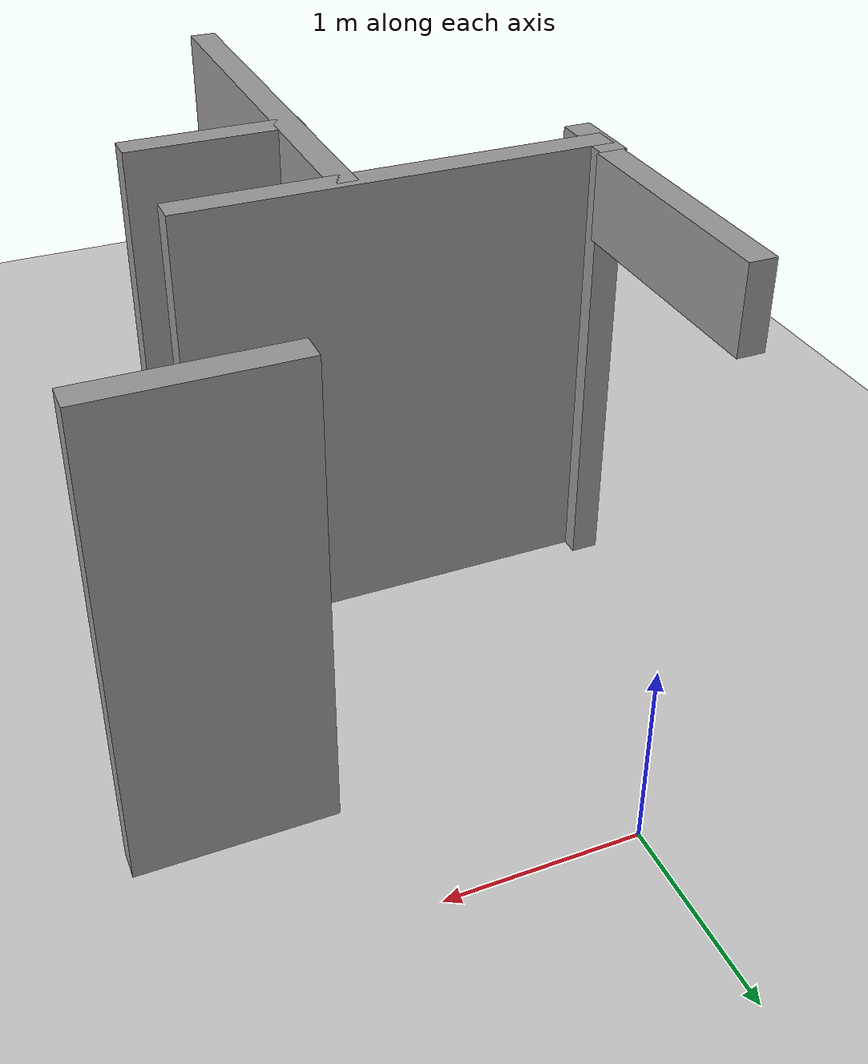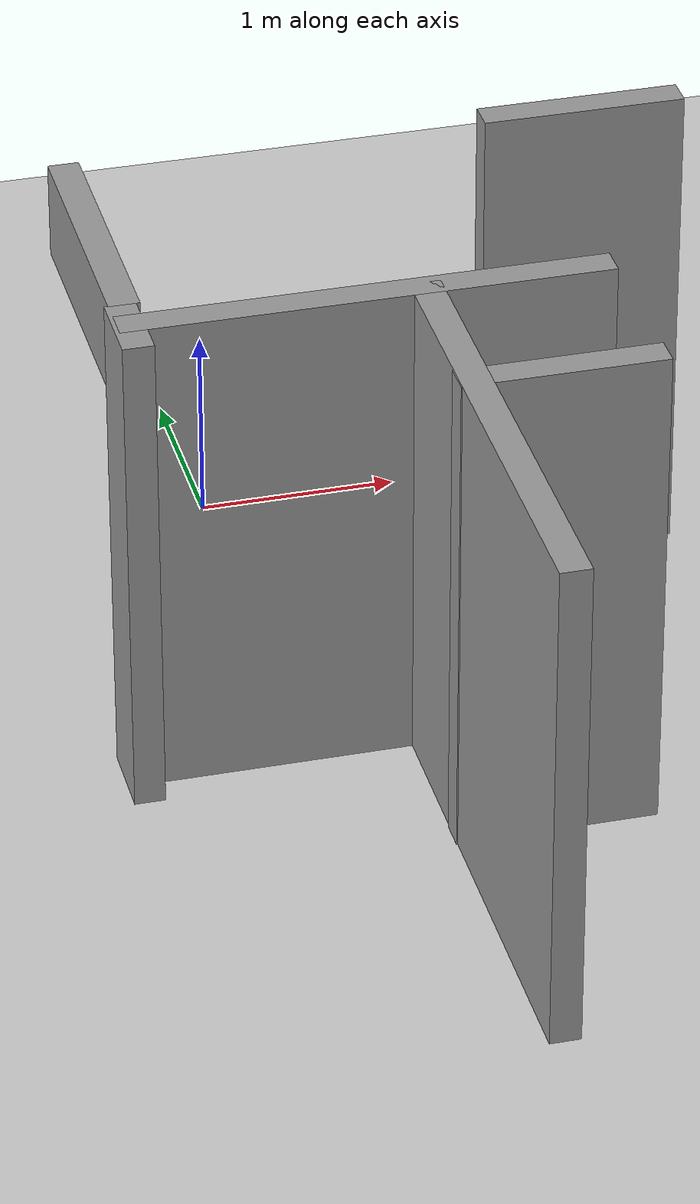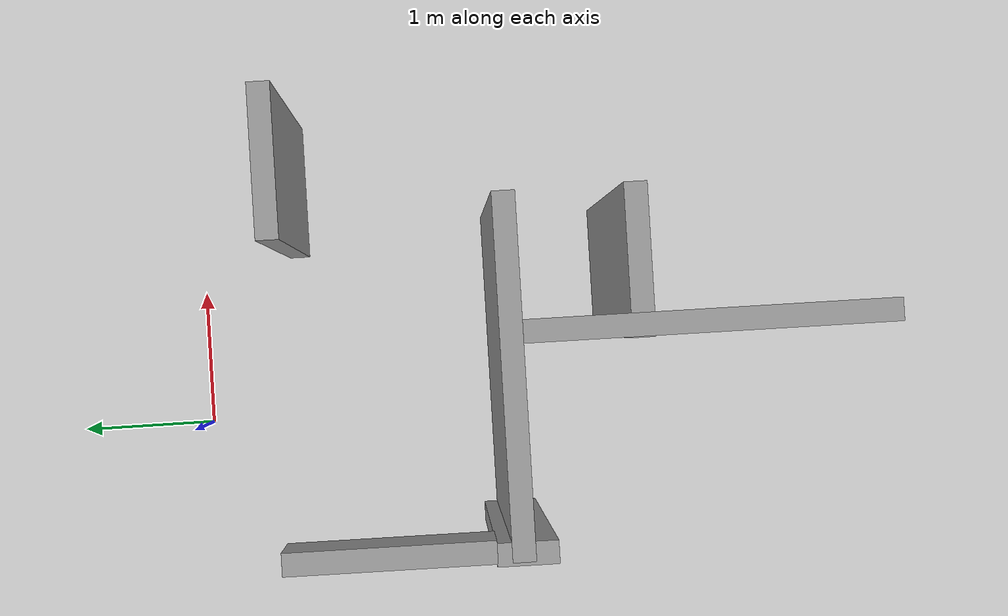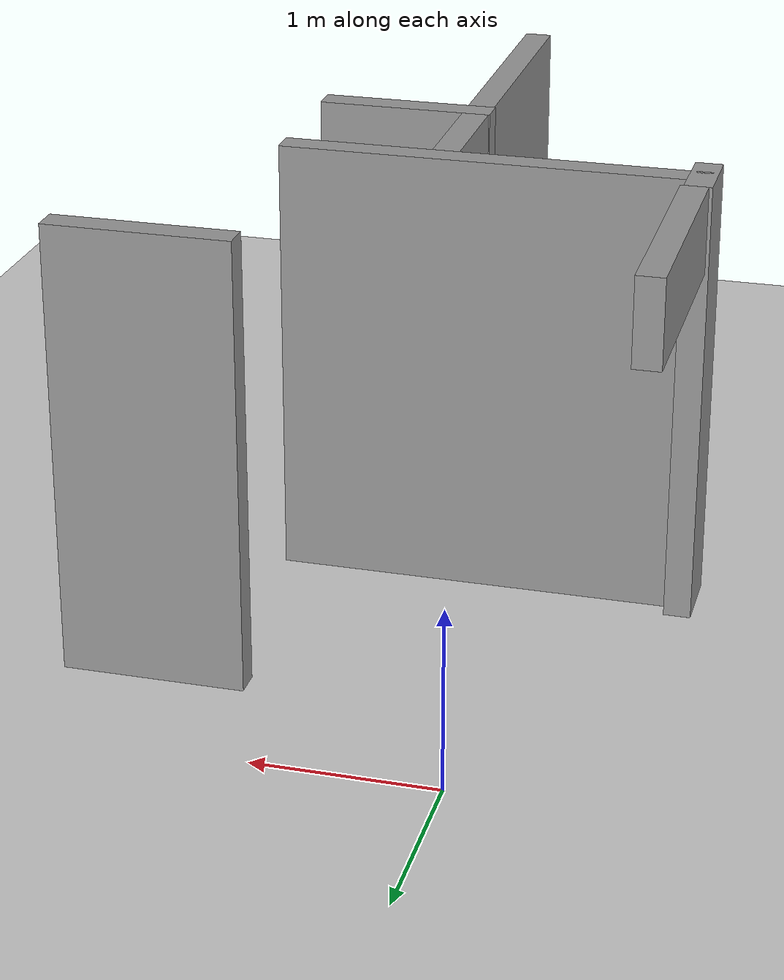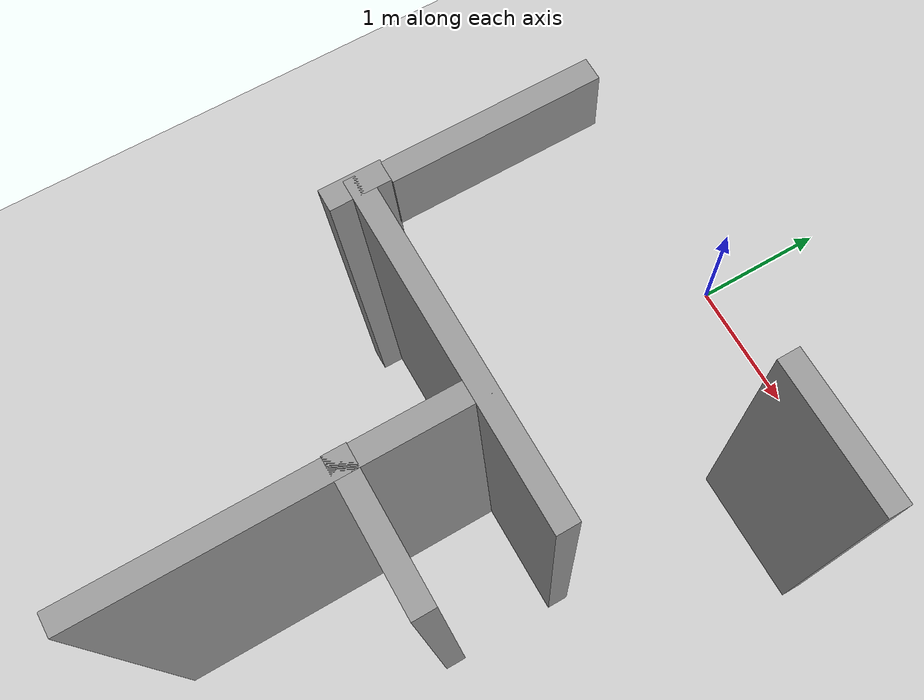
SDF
<sdf version="1.7">
 <world name="default">
  <model name="demo_clean">
   <static>1</static>
   <link name="Wall_19">
    <collision name="Wall_19_Collision">
     <geometry><box><size>2.34163 0.15 2.5</size></box></geometry>
     <pose>0 0 1.25 0 -0 0</pose>
     <surface>
      <friction>
       <ode><mu>1</mu><mu2>1</mu2><fdir1>0 0 0</fdir1><slip1>0</slip1><slip2>0</slip2></ode>
       <torsional>
        <coefficient>1</coefficient>
        <patch_radius>0</patch_radius>
        <surface_radius>0</surface_radius>
        <use_patch_radius>1</use_patch_radius>
        <ode><slip>0</slip></ode>
       </torsional>
      </friction>
      <bounce><restitution_coefficient>0</restitution_coefficient><threshold>1e+06</threshold></bounce>
      <contact>
       <collide_without_contact>0</collide_without_contact>
       <collide_without_contact_bitmask>1</collide_without_contact_bitmask>
       <collide_bitmask>1</collide_bitmask>
       <ode>
        <soft_cfm>0</soft_cfm>
        <soft_erp>0.2</soft_erp>
        <kp>1e+13</kp>
        <kd>1</kd>
        <max_vel>0.01</max_vel>
        <min_depth>0</min_depth>
       </ode>
       <bullet>
        <split_impulse>1</split_impulse>
        <split_impulse_penetration_threshold>-0.01</split_impulse_penetration_threshold>
        <soft_cfm>0</soft_cfm>
        <soft_erp>0.2</soft_erp>
        <kp>1e+13</kp>
        <kd>1</kd>
       </bullet>
      </contact>
     </surface>
    </collision>
    <visual name="Wall_19_Visual">
     <geometry><box><size>2.34163 0.15 2.5</size></box></geometry>
     <material>
      <script><name>Gazebo/Grey</name><uri>file://media/materials/scripts/gazebo.material</uri></script>
      <ambient>1 1 1 1</ambient>
      <shader type="pixel"><normal_map>default</normal_map></shader>
     </material>
     <pose>0 0 1.25 0 -0 0</pose>
    </visual>
    <inertial>
     <inertia><ixx>0</ixx><iyy>0</iyy><izz>0</izz><ixy>0</ixy><ixz>0</ixz><iyz>0</iyz></inertia>
     <mass>1</mass>
    </inertial>
    <pose>0.295923 -2.24288 0 0 -0 0</pose>
   </link>
   <link name="Wall_21">
    <collision name="Wall_21_Collision">
     <geometry><box><size>2.5 0.15 2.5</size></box></geometry>
     <pose>0 0 1.25 0 -0 0</pose>
     <surface>
      <friction>
       <ode><mu>1</mu><mu2>1</mu2><fdir1>0 0 0</fdir1><slip1>0</slip1><slip2>0</slip2></ode>
       <torsional>
        <coefficient>1</coefficient>
        <patch_radius>0</patch_radius>
        <surface_radius>0</surface_radius>
        <use_patch_radius>1</use_patch_radius>
        <ode><slip>0</slip></ode>
       </torsional>
      </friction>
      <bounce><restitution_coefficient>0</restitution_coefficient><threshold>1e+06</threshold></bounce>
      <contact>
       <collide_without_contact>0</collide_without_contact>
       <collide_without_contact_bitmask>1</collide_without_contact_bitmask>
       <collide_bitmask>1</collide_bitmask>
       <ode>
        <soft_cfm>0</soft_cfm>
        <soft_erp>0.2</soft_erp>
        <kp>1e+13</kp>
        <kd>1</kd>
        <max_vel>0.01</max_vel>
        <min_depth>0</min_depth>
       </ode>
       <bullet>
        <split_impulse>1</split_impulse>
        <split_impulse_penetration_threshold>-0.01</split_impulse_penetration_threshold>
        <soft_cfm>0</soft_cfm>
        <soft_erp>0.2</soft_erp>
        <kp>1e+13</kp>
        <kd>1</kd>
       </bullet>
      </contact>
     </surface>
    </collision>
    <visual name="Wall_21_Visual">
     <geometry><box><size>2.5 0.15 2.5</size></box></geometry>
     <material>
      <script><name>Gazebo/Grey</name><uri>file://media/materials/scripts/gazebo.material</uri></script>
      <ambient>1 1 1 1</ambient>
      <shader type="pixel"><normal_map>default</normal_map></shader>
     </material>
     <pose>0 0 1.25 0 -0 0</pose>
    </visual>
    <pose>0.573753 -3.46553 0 0 0 -1.5708</pose>
   </link>
   <link name="Wall_21_clone_0">
    <collision name="Wall_21_Collision">
     <geometry><box><size>0.394105 0.15 2.5</size></box></geometry>
     <pose>0 0 1.25 0 -0 0</pose>
     <surface>
      <friction>
       <ode><mu>1</mu><mu2>1</mu2><fdir1>0 0 0</fdir1><slip1>0</slip1><slip2>0</slip2></ode>
       <torsional>
        <coefficient>1</coefficient>
        <patch_radius>0</patch_radius>
        <surface_radius>0</surface_radius>
        <use_patch_radius>1</use_patch_radius>
        <ode><slip>0</slip></ode>
       </torsional>
      </friction>
      <bounce><restitution_coefficient>0</restitution_coefficient><threshold>1e+06</threshold></bounce>
      <contact>
       <collide_without_contact>0</collide_without_contact>
       <collide_without_contact_bitmask>1</collide_without_contact_bitmask>
       <collide_bitmask>1</collide_bitmask>
       <ode>
        <soft_cfm>0</soft_cfm>
        <soft_erp>0.2</soft_erp>
        <kp>1e+13</kp>
        <kd>1</kd>
        <max_vel>0.01</max_vel>
        <min_depth>0</min_depth>
       </ode>
       <bullet>
        <split_impulse>1</split_impulse>
        <split_impulse_penetration_threshold>-0.01</split_impulse_penetration_threshold>
        <soft_cfm>0</soft_cfm>
        <soft_erp>0.2</soft_erp>
        <kp>1e+13</kp>
        <kd>1</kd>
       </bullet>
      </contact>
     </surface>
    </collision>
    <visual name="Wall_21_Visual">
     <geometry><box><size>0.394105 0.15 2.5</size></box></geometry>
     <material>
      <script><name>Gazebo/Grey</name><uri>file://media/materials/scripts/gazebo.material</uri></script>
      <ambient>1 1 1 1</ambient>
      <shader type="pixel"><normal_map>default</normal_map></shader>
     </material>
     <pose>0 0 1.25 0 -0 0</pose>
    </visual>
    <inertial>
     <inertia><ixx>0</ixx><iyy>0</iyy><izz>0</izz><ixy>0</ixy><ixz>0</ixz><iyz>0</iyz></inertia>
     <mass>1</mass>
    </inertial>
    <pose>-0.820336 -2.26773 0 0 0 -1.5708</pose>
   </link>
   <link name="Wall_23">
    <collision name="Wall_23_Collision">
     <geometry><box><size>0.981708 0.15 2.5</size></box></geometry>
     <pose>0 0 1.25 0 -0 0</pose>
     <surface>
      <friction>
       <ode><mu>1</mu><mu2>1</mu2><fdir1>0 0 0</fdir1><slip1>0</slip1><slip2>0</slip2></ode>
       <torsional>
        <coefficient>1</coefficient>
        <patch_radius>0</patch_radius>
        <surface_radius>0</surface_radius>
        <use_patch_radius>1</use_patch_radius>
        <ode><slip>0</slip></ode>
       </torsional>
      </friction>
      <bounce><restitution_coefficient>0</restitution_coefficient><threshold>1e+06</threshold></bounce>
      <contact>
       <collide_without_contact>0</collide_without_contact>
       <collide_without_contact_bitmask>1</collide_without_contact_bitmask>
       <collide_bitmask>1</collide_bitmask>
       <ode>
        <soft_cfm>0</soft_cfm>
        <soft_erp>0.2</soft_erp>
        <kp>1e+13</kp>
        <kd>1</kd>
        <max_vel>0.01</max_vel>
        <min_depth>0</min_depth>
       </ode>
       <bullet>
        <split_impulse>1</split_impulse>
        <split_impulse_penetration_threshold>-0.01</split_impulse_penetration_threshold>
        <soft_cfm>0</soft_cfm>
        <soft_erp>0.2</soft_erp>
        <kp>1e+13</kp>
        <kd>1</kd>
       </bullet>
      </contact>
     </surface>
    </collision>
    <visual name="Wall_23_Visual">
     <geometry><box><size>0.981708 0.15 2.5</size></box></geometry>
     <material>
      <script><name>Gazebo/Grey</name><uri>file://media/materials/scripts/gazebo.material</uri></script>
      <ambient>1 1 1 1</ambient>
      <shader type="pixel"><normal_map>default</normal_map></shader>
     </material>
     <pose>0 0 1.25 0 -0 0</pose>
    </visual>
    <inertial>
     <inertia><ixx>0</ixx><iyy>0</iyy><izz>0</izz><ixy>0</ixy><ixz>0</ixz><iyz>0</iyz></inertia>
     <mass>1</mass>
    </inertial>
    <pose>0.983425 -3.07697 0 0 -0 0</pose>
   </link>
   <link name="Wall_28">
    <collision name="Wall_28_Collision">
     <geometry><box><size>1 0.15 2.5</size></box></geometry>
     <pose>0 0 1.25 0 -0 0</pose>
     <surface>
      <friction>
       <ode><mu>1</mu><mu2>1</mu2><fdir1>0 0 0</fdir1><slip1>0</slip1><slip2>0</slip2></ode>
       <torsional>
        <coefficient>1</coefficient>
        <patch_radius>0</patch_radius>
        <surface_radius>0</surface_radius>
        <use_patch_radius>1</use_patch_radius>
        <ode><slip>0</slip></ode>
       </torsional>
      </friction>
      <bounce><restitution_coefficient>0</restitution_coefficient><threshold>1e+06</threshold></bounce>
      <contact>
       <collide_without_contact>0</collide_without_contact>
       <collide_without_contact_bitmask>1</collide_without_contact_bitmask>
       <collide_bitmask>1</collide_bitmask>
       <ode>
        <soft_cfm>0</soft_cfm>
        <soft_erp>0.2</soft_erp>
        <kp>1e+13</kp>
        <kd>1</kd>
        <max_vel>0.01</max_vel>
        <min_depth>0</min_depth>
       </ode>
       <bullet>
        <split_impulse>1</split_impulse>
        <split_impulse_penetration_threshold>-0.01</split_impulse_penetration_threshold>
        <soft_cfm>0</soft_cfm>
        <soft_erp>0.2</soft_erp>
        <kp>1e+13</kp>
        <kd>1</kd>
       </bullet>
      </contact>
     </surface>
    </collision>
    <visual name="Wall_28_Visual">
     <geometry><box><size>1 0.15 2.5</size></box></geometry>
     <material>
      <script><name>Gazebo/Grey</name><uri>file://media/materials/scripts/gazebo.material</uri></script>
      <ambient>1 1 1 1</ambient>
      <shader type="pixel"><normal_map>default</normal_map></shader>
     </material>
     <pose>0 0 1.25 0 -0 0</pose>
    </visual>
    <pose>1.74215 -0.745235 0 0 -0 0</pose>
   </link>
   <link name="Wall_28_clone_clone_clone">
    <gravity>0</gravity>
    <collision name="Wall_28_Collision">
     <geometry><box><size>1.35894 0.15 0.476648</size></box></geometry>
     <pose>0 0 1.25 0 -0 0</pose>
     <surface>
      <friction>
       <ode><mu>1</mu><mu2>1</mu2><fdir1>0 0 0</fdir1><slip1>0</slip1><slip2>0</slip2></ode>
       <torsional>
        <coefficient>1</coefficient>
        <patch_radius>0</patch_radius>
        <surface_radius>0</surface_radius>
        <use_patch_radius>1</use_patch_radius>
        <ode><slip>0</slip></ode>
       </torsional>
      </friction>
      <bounce><restitution_coefficient>0</restitution_coefficient><threshold>1e+06</threshold></bounce>
      <contact>
       <collide_without_contact>0</collide_without_contact>
       <collide_without_contact_bitmask>1</collide_without_contact_bitmask>
       <collide_bitmask>1</collide_bitmask>
       <ode>
        <soft_cfm>0</soft_cfm>
        <soft_erp>0.2</soft_erp>
        <kp>1e+13</kp>
        <kd>1</kd>
        <max_vel>0.01</max_vel>
        <min_depth>0</min_depth>
       </ode>
       <bullet>
        <split_impulse>1</split_impulse>
        <split_impulse_penetration_threshold>-0.01</split_impulse_penetration_threshold>
        <soft_cfm>0</soft_cfm>
        <soft_erp>0.2</soft_erp>
        <kp>1e+13</kp>
        <kd>1</kd>
       </bullet>
      </contact>
     </surface>
    </collision>
    <visual name="Wall_28_Visual">
     <geometry><box><size>1.35894 0.15 0.476648</size></box></geometry>
     <material>
      <script><name>Gazebo/Grey</name><uri>file://media/materials/scripts/gazebo.material</uri></script>
      <ambient>1 1 1 1</ambient>
      <shader type="pixel"><normal_map>__default__</normal_map></shader>
     </material>
     <pose>0 0 1.25 0 -0 0</pose>
    </visual>
    <inertial>
     <inertia><ixx>0</ixx><iyy>0</iyy><izz>0</izz><ixy>0</ixy><ixz>0</ixz><iyz>0</iyz></inertia>
     <mass>1</mass>
    </inertial>
    <pose>-0.802228 -1.39589 1.01168 0 0 -1.57004</pose>
   </link>
  </model>
  <model name="ground_plane">
   <static>1</static>
   <link name="link">
    <collision name="collision">
     <geometry><plane><normal>0 0 1</normal><size>100 100</size></plane></geometry>
     <surface>
      <contact><collide_bitmask>65535</collide_bitmask></contact>
      <friction><ode><mu>100</mu><mu2>50</mu2></ode></friction>
     </surface>
    </collision>
    <visual name="visual">
     <cast_shadows>0</cast_shadows>
     <geometry><plane><normal>0 0 1</normal><size>100 100</size></plane></geometry>
     <material>
      <script><uri>file://media/materials/scripts/gazebo.material</uri><name>Gazebo/Grey</name></script>
     </material>
    </visual>
   </link>
  </model>
 </world>
</sdf>
